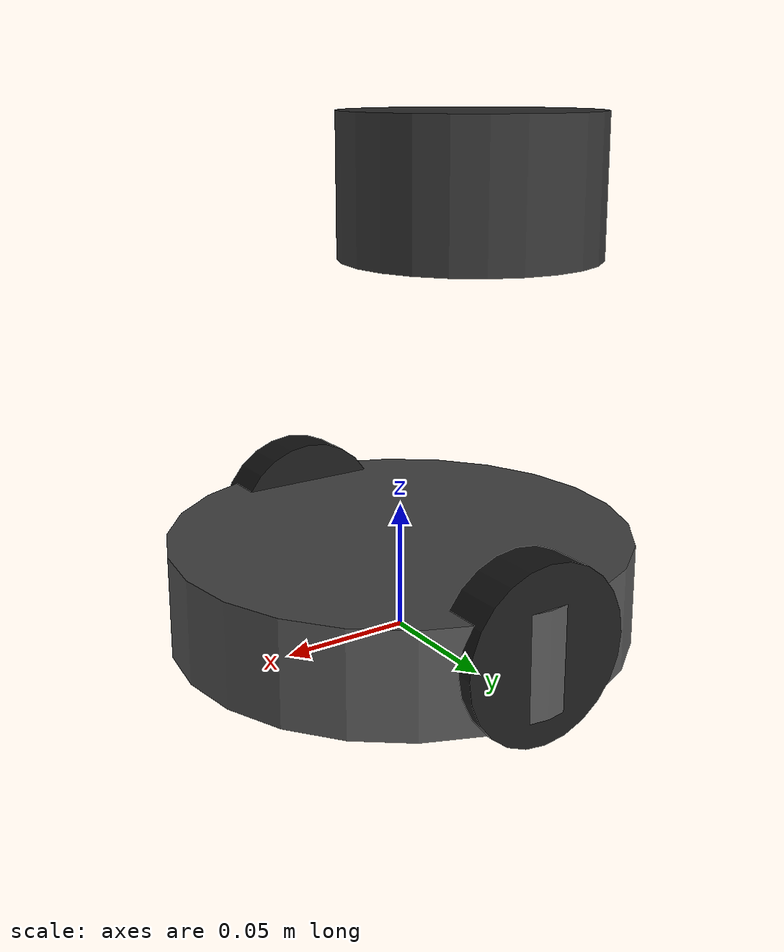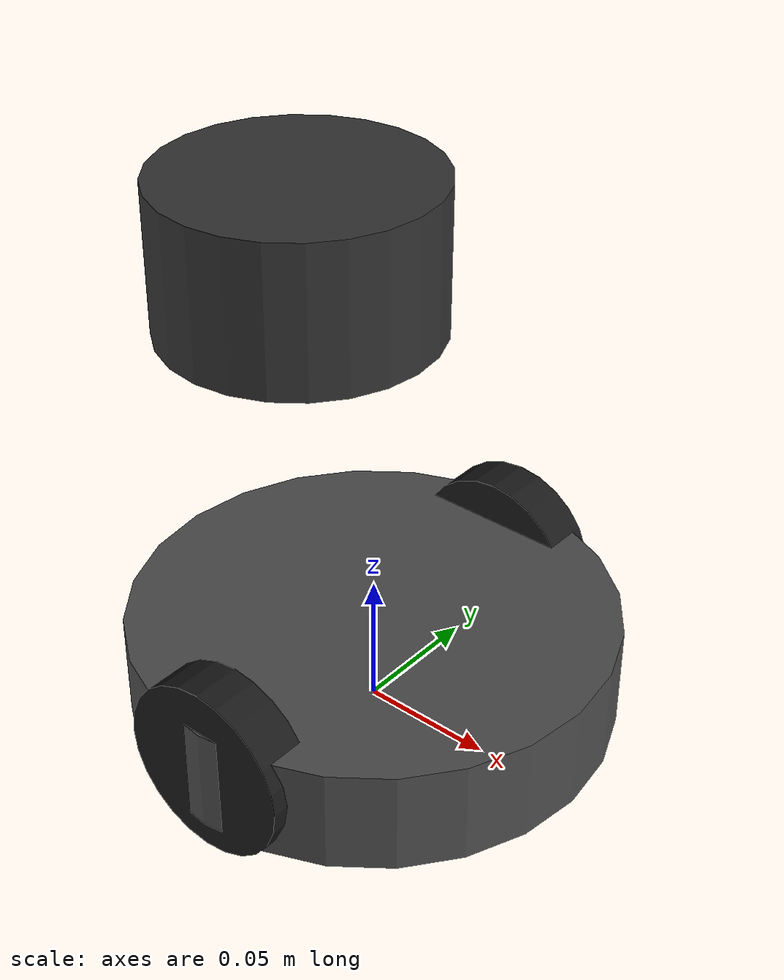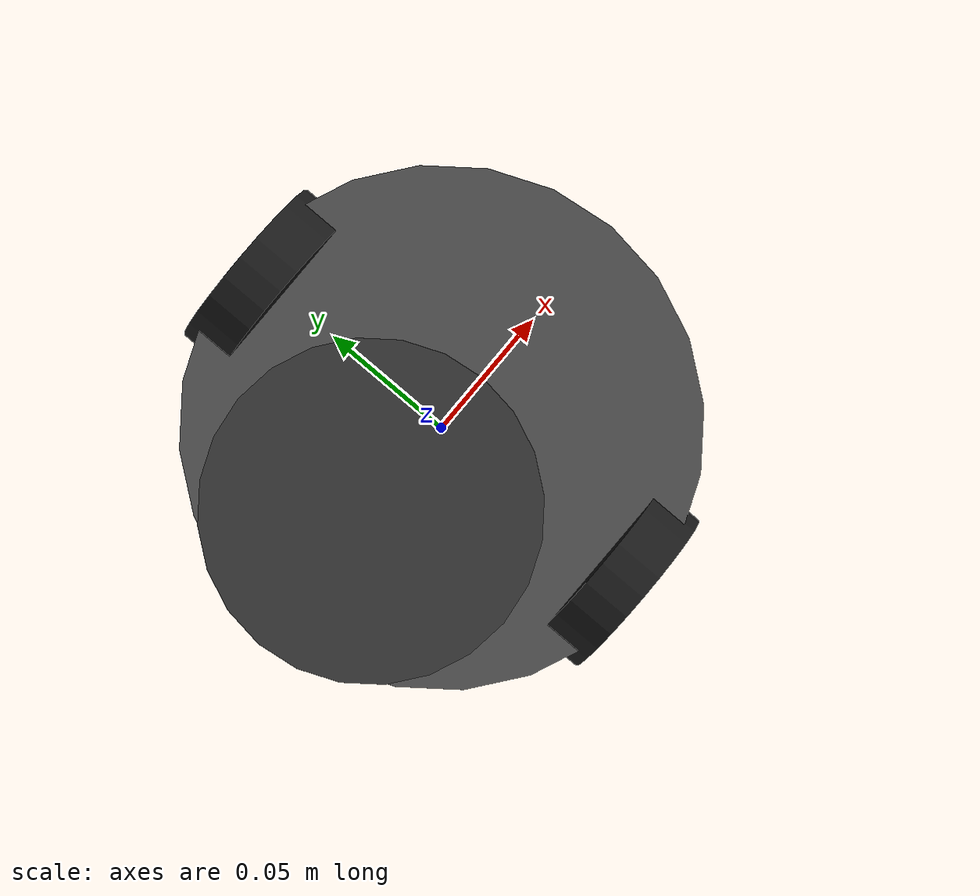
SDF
<?xml version="1.0" ?>
<sdf version="1.8">
  <model name="turtlebot3_burger">
    <pose>0.0 0.0 0.0 0.0 0.0 0.0</pose>

    <link name="base_footprint"/>

    <link name="base_link">

      <inertial>
        <pose>-0.064 0 0.070 0 0 0</pose>
        <inertia>
          <ixx>1.9527e-02</ixx>
          <ixy>0</ixy>
          <ixz>0</ixz>
          <iyy>1.9527e-02</iyy>
          <iyz>0</iyz>
          <izz>1.9527e-02</izz>
        </inertia>
        <mass>8.2573504e-01</mass>
      </inertial>

      <collision name="base_collision">
        <pose>-0.032 0 0.070 0 0 0</pose>
        <geometry>
          <box>
            <size>0.14 0.14 0.14</size>
          </box>
        </geometry>
      </collision>

      <visual name="base_visual">
        <pose>0 0 0.02 0 0 0</pose>
        <geometry>
          <cylinder>
            <radius>0.09</radius>
            <length>0.04</length>
          </cylinder>
        </geometry>
        <material>
          <ambient>0.3 0.3 0.3 1.0</ambient>
          <diffuse>0.3 0.3 0.3 1.0</diffuse>
        </material>
      </visual>
    </link>

    <link name="base_scan">
      <inertial>
        <pose>-0.020 0 0.161 0 0 0</pose>
        <inertia>
          <ixx>0.0001</ixx>
          <ixy>0.000</ixy>
          <ixz>0.000</ixz>
          <iyy>0.0001</iyy>
          <iyz>0.000</iyz>
          <izz>0.0001</izz>
        </inertia>
        <mass>0.114</mass>
      </inertial>

      <collision name="lidar_sensor_collision">
        <pose>-0.020 0 0.161 0 0 0</pose>
        <geometry>
          <cylinder>
            <radius>0.0508</radius>
            <length>0.055</length>
          </cylinder>
        </geometry>
      </collision>

      <visual name="lidar_sensor_visual">
        <pose>-0.032 0 0.171 0 0 0</pose>
        <geometry>
          <cylinder>
            <radius>0.0508</radius>
            <length>0.055</length>
          </cylinder>
        </geometry>
        <material>
          <ambient>0.2 0.2 0.2 1.0</ambient>
          <diffuse>0.2 0.2 0.2 1.0</diffuse>
        </material>
      </visual>

      <sensor name="hls_lfcd_lds" type="gpu_lidar">
        <always_on>true</always_on>
        <visualize>true</visualize>
        <pose>-0.032 0 0.171 0 0 0</pose>
        <update_rate>5</update_rate>
        <topic>scan</topic>
        <frame_id>base_scan</frame_id>
        <lidar>
          <scan>
            <horizontal>
              <samples>360</samples>
              <resolution>1.000000</resolution>
              <min_angle>0.000000</min_angle>
              <max_angle>6.280000</max_angle>
            </horizontal>
          </scan>
          <range>
            <min>0.120000</min>
            <max>3.5</max>
            <resolution>0.015000</resolution>
          </range>
          <noise>
            <type>gaussian</type>
            <mean>0.0</mean>
            <stddev>0.01</stddev>
          </noise>
        </lidar>
      </sensor>
    </link>

    <link name="wheel_left_link">
      <inertial>
        <pose>0 0.08 0.023 -1.57 0 0</pose>
        <inertia>
          <ixx>5.445e-05</ixx>
          <ixy>0</ixy>
          <ixz>0</ixz>
          <iyy>5.445e-05</iyy>
          <iyz>0</iyz>
          <izz>1.089e-04</izz>
        </inertia>
        <mass>0.1</mass>
      </inertial>

      <collision name="wheel_left_collision">
        <pose>0 0.08 0.023 -1.57 0 0</pose>
        <geometry>
          <cylinder>
            <radius>0.033</radius>
            <length>0.018</length>
          </cylinder>
        </geometry>
      </collision>

      <visual name="wheel_left_visual">
        <pose>0 0.08 0.023 -1.57 0 0</pose>
        <geometry>
          <cylinder>
            <radius>0.033</radius>
            <length>0.018</length>
          </cylinder>
        </geometry>
        <material>
          <ambient>0.1 0.1 0.1 1.0</ambient>
          <diffuse>0.1 0.1 0.1 1.0</diffuse>
        </material>
      </visual>
    </link>

    <link name="wheel_right_link">
      <inertial>
        <pose>0 -0.08 0.023 -1.57 0 0</pose>
        <inertia>
          <ixx>5.445e-05</ixx>
          <ixy>0</ixy>
          <ixz>0</ixz>
          <iyy>5.445e-05</iyy>
          <iyz>0</iyz>
          <izz>1.089e-04</izz>
        </inertia>
        <mass>0.1</mass>
      </inertial>

      <collision name="wheel_right_collision">
        <pose>0 -0.08 0.023 -1.57 0 0</pose>
        <geometry>
          <cylinder>
            <radius>0.033</radius>
            <length>0.018</length>
          </cylinder>
        </geometry>
      </collision>

      <visual name="wheel_right_visual">
        <pose>0 -0.08 0.023 -1.57 0 0</pose>
        <geometry>
          <cylinder>
            <radius>0.033</radius>
            <length>0.018</length>
          </cylinder>
        </geometry>
        <material>
          <ambient>0.1 0.1 0.1 1.0</ambient>
          <diffuse>0.1 0.1 0.1 1.0</diffuse>
        </material>
      </visual>
    </link>

    <link name='caster_back_link'>
      <pose>-0.081 0 -0.004 -1.57 0 0</pose>
      <inertial>
        <mass>0.005</mass>
        <inertia>
          <ixx>0.00001</ixx>
          <ixy>0.000</ixy>
          <ixz>0.000</ixz>
          <iyy>0.00001</iyy>
          <iyz>0.000</iyz>
          <izz>0.00001</izz>
        </inertia>
      </inertial>
      <collision name='collision'>
        <geometry>
          <sphere>
            <radius>0.005000</radius>
          </sphere>
        </geometry>
        <surface>
          <contact>
            <ode>
              <soft_cfm>0</soft_cfm>
              <soft_erp>0.2</soft_erp>
              <kp>1e+5</kp>
              <kd>1</kd>
              <max_vel>0.01</max_vel>
              <min_depth>0.001</min_depth>
            </ode>
          </contact>
        </surface>
      </collision>
    </link>

    <joint name="base_joint" type="fixed">
      <parent>base_footprint</parent>
      <child>base_link</child>
      <pose>0.0 0.0 0.010 0 0 0</pose>
    </joint>

    <joint name="wheel_left_joint" type="revolute">
      <parent>base_link</parent>
      <child>wheel_left_link</child>
      <pose>0.0 0.08 0.023 -1.57 0 0</pose>
      <axis>
        <xyz>0 0 1</xyz>
        <limit>
          <effort>20</effort>
        </limit>
      </axis>
    </joint>

    <joint name="wheel_right_joint" type="revolute">
      <parent>base_link</parent>
      <child>wheel_right_link</child>
      <pose>0.0 -0.08 0.023 -1.57 0 0</pose>
      <axis>
        <xyz>0 0 1</xyz>
        <limit>
          <effort>20</effort>
        </limit>
      </axis>
    </joint>

    <joint name='caster_back_joint' type='ball'>
      <parent>base_link</parent>
      <child>caster_back_link</child>
    </joint>

    <joint name="lidar_joint" type="fixed">
      <parent>base_link</parent>
      <child>base_scan</child>
      <pose>-0.032 0 0.171 0 0 0</pose>
      <axis>
        <xyz>0 0 1</xyz>
      </axis>
    </joint>

    <plugin filename="gz-sim-diff-drive-system" name="gz::sim::systems::DiffDrive">

      <!-- wheels -->
      <left_joint>wheel_left_joint</left_joint>
      <right_joint>wheel_right_joint</right_joint>

      <!-- kinematics -->
      <wheel_separation>0.160</wheel_separation>
      <wheel_radius>0.033</wheel_radius>

      <!-- limits -->
      <max_linear_acceleration>1.0</max_linear_acceleration>

      <topic>cmd_vel</topic>

    </plugin>

  </model>
</sdf>
